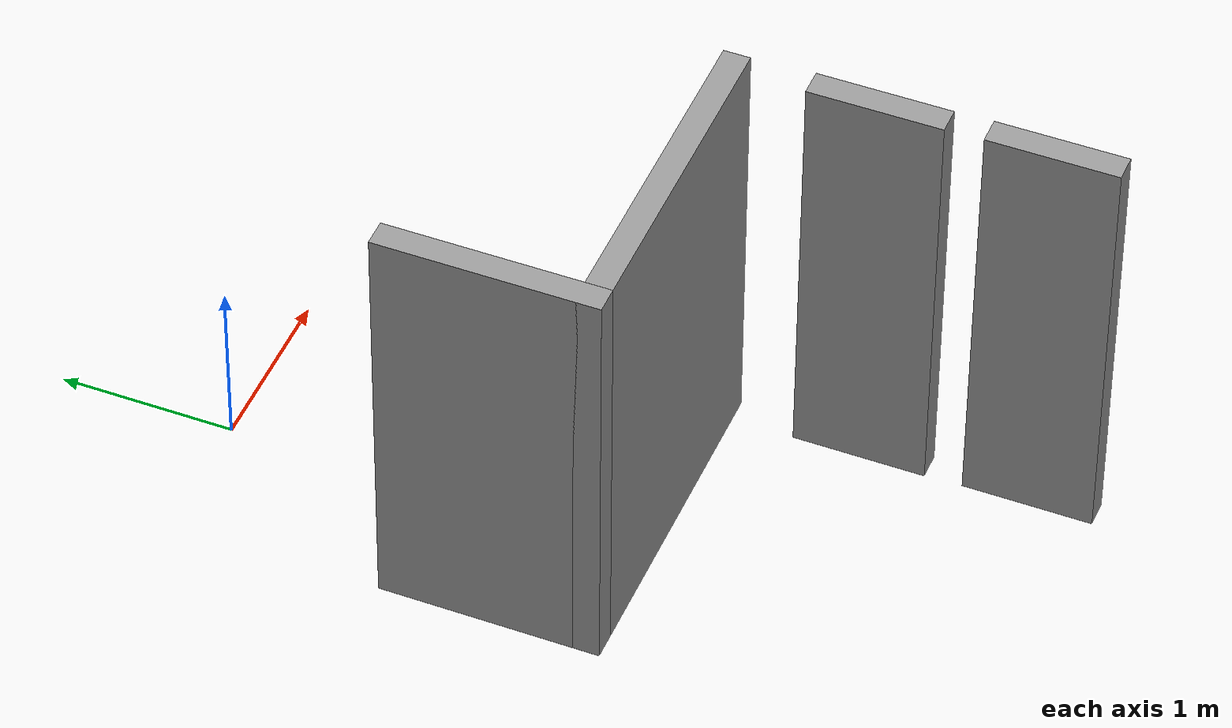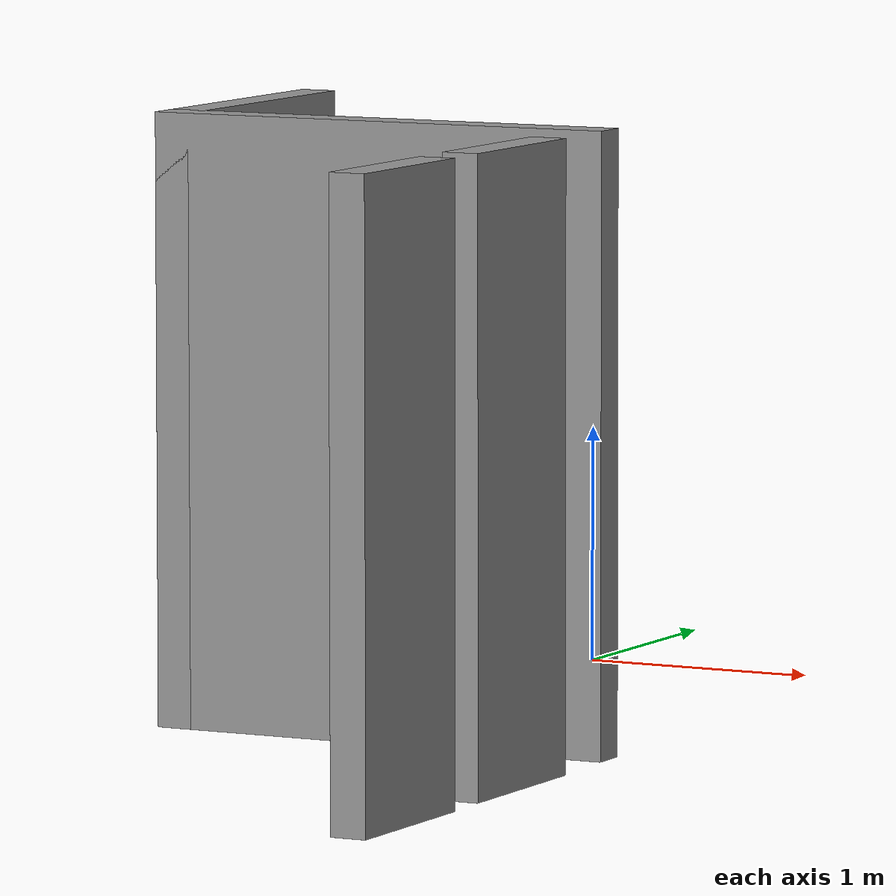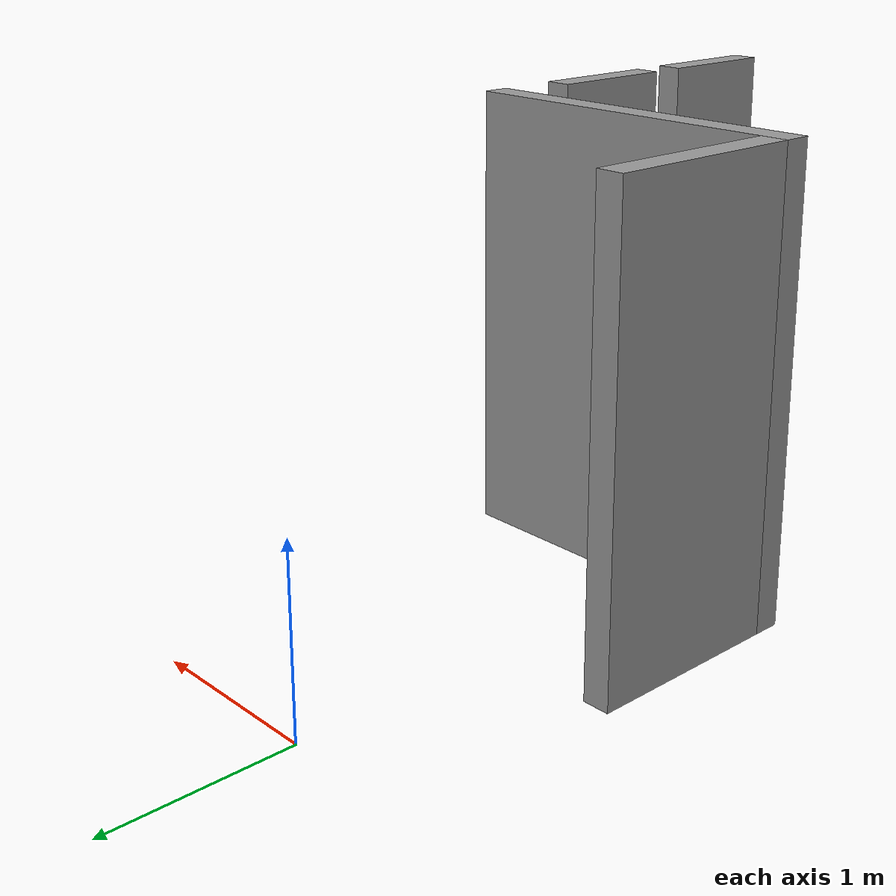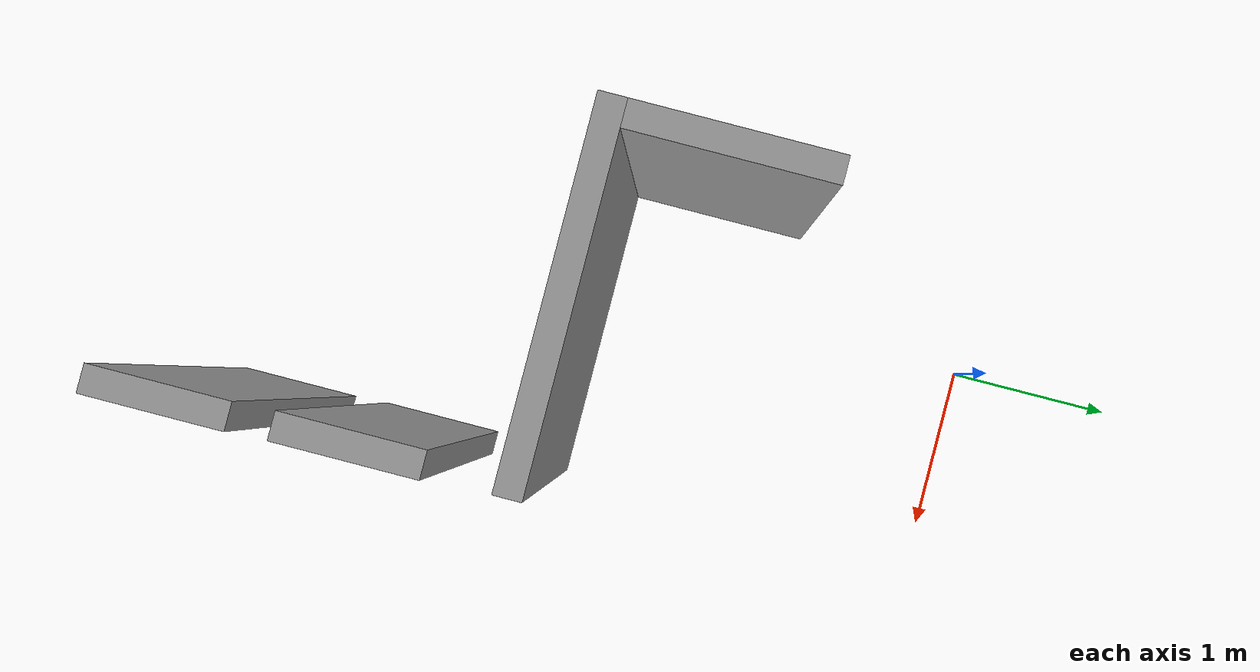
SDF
<?xml version='1.0'?>
<sdf version='1.7'>
  <model name='smart_farm01'>
    <pose>0.26 -2.2425 0 0 -0 0</pose>
    <link name='Wall_0'>
      <collision name='Wall_0_Collision'>
        <geometry>
          <box>
            <size>2 0.15 2.5</size>
          </box>
        </geometry>
        <pose>0 0 1.25 0 -0 0</pose>
      </collision>
      <visual name='Wall_0_Visual'>
        <pose>0 0 1.25 0 -0 0</pose>
        <geometry>
          <box>
            <size>2 0.15 2.5</size>
          </box>
        </geometry>
        <material>
          <script>
            <uri>file://media/materials/scripts/gazebo.material</uri>
            <name>Gazebo/Grey</name>
          </script>
          <ambient>1 1 1 1</ambient>
        </material>
        <meta>
          <layer>0</layer>
        </meta>
      </visual>
      <pose>-0.015 -0.1275 0 0 -0 3.14159</pose>
    </link>
    <link name='Wall_3'>
      <collision name='Wall_3_Collision'>
        <geometry>
          <box>
            <size>1.25 0.15 2.5</size>
          </box>
        </geometry>
        <pose>0 0 1.25 0 -0 0</pose>
      </collision>
      <visual name='Wall_3_Visual'>
        <pose>0 0 1.25 0 -0 0</pose>
        <geometry>
          <box>
            <size>1.25 0.15 2.5</size>
          </box>
        </geometry>
        <material>
          <script>
            <uri>file://media/materials/scripts/gazebo.material</uri>
            <name>Gazebo/Grey</name>
          </script>
          <ambient>1 1 1 1</ambient>
        </material>
        <meta>
          <layer>0</layer>
        </meta>
      </visual>
      <pose>-0.94 0.4225 0 0 -0 1.5708</pose>
    </link>
    <link name='Wall_5'>
      <collision name='Wall_5_Collision'>
        <geometry>
          <box>
            <size>0.75 0.15 2.5</size>
          </box>
        </geometry>
        <pose>0 0 1.25 0 -0 0</pose>
      </collision>
      <visual name='Wall_5_Visual'>
        <pose>0 0 1.25 0 -0 0</pose>
        <geometry>
          <box>
            <size>0.75 0.15 2.5</size>
          </box>
        </geometry>
        <material>
          <script>
            <uri>file://media/materials/scripts/gazebo.material</uri>
            <name>Gazebo/Grey</name>
          </script>
          <ambient>1 1 1 1</ambient>
        </material>
        <meta>
          <layer>0</layer>
        </meta>
      </visual>
      <pose>0.93 -0.9275 0 0 -0 -1.5708</pose>
    </link>
    <link name='Wall_7'>
      <collision name='Wall_7_Collision'>
        <geometry>
          <box>
            <size>0.73 0.15 2.5</size>
          </box>
        </geometry>
        <pose>0 0 1.25 0 -0 0</pose>
      </collision>
      <visual name='Wall_7_Visual'>
        <pose>0 0 1.25 0 -0 0</pose>
        <geometry>
          <box>
            <size>0.73 0.15 2.5</size>
          </box>
        </geometry>
        <material>
          <script>
            <uri>file://media/materials/scripts/gazebo.material</uri>
            <name>Gazebo/Grey</name>
          </script>
          <ambient>1 1 1 1</ambient>
        </material>
        <meta>
          <layer>0</layer>
        </meta>
      </visual>
      <pose>0.94 -1.8775 0 0 -0 -1.5708</pose>
    </link>
    <static>1</static>
  </model>
</sdf>
